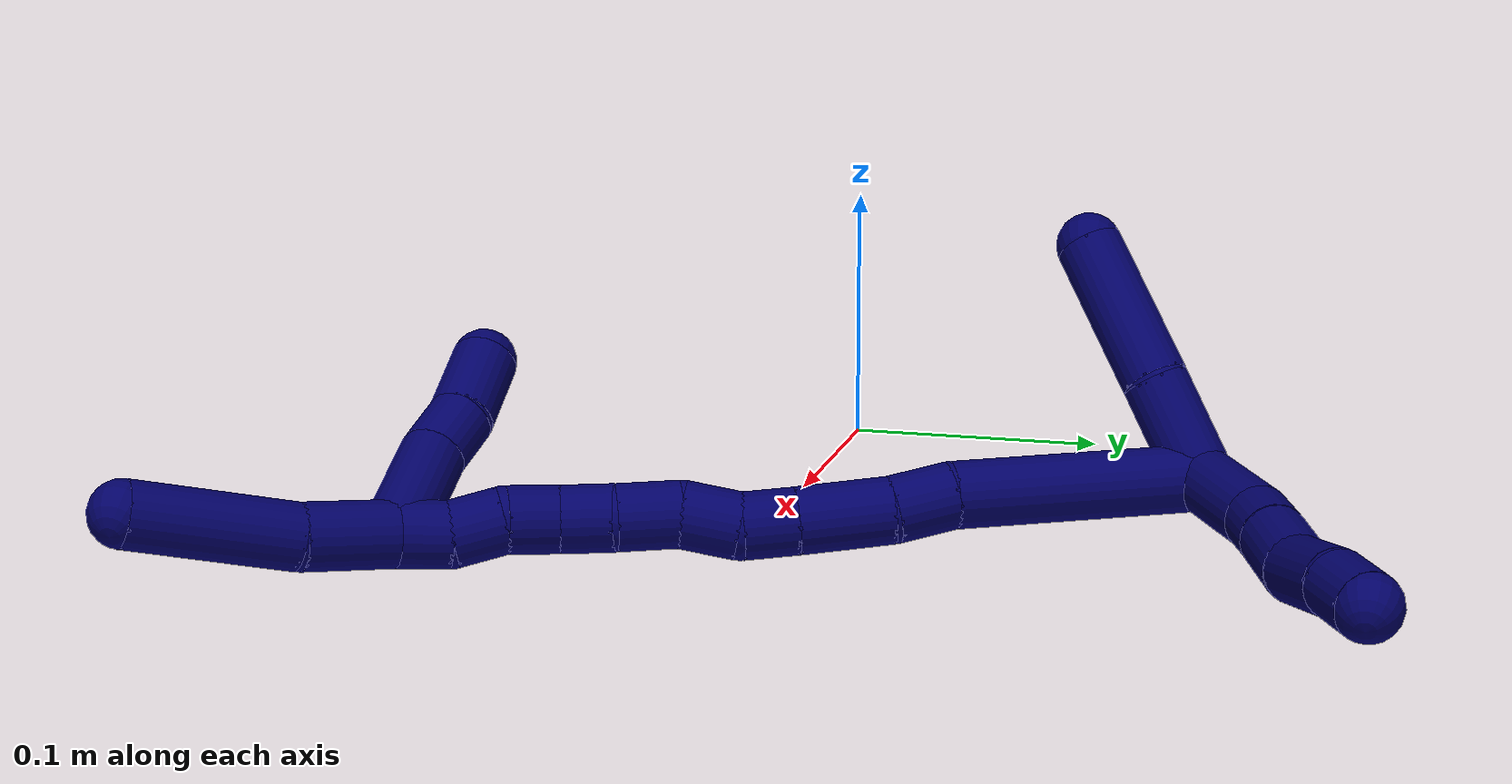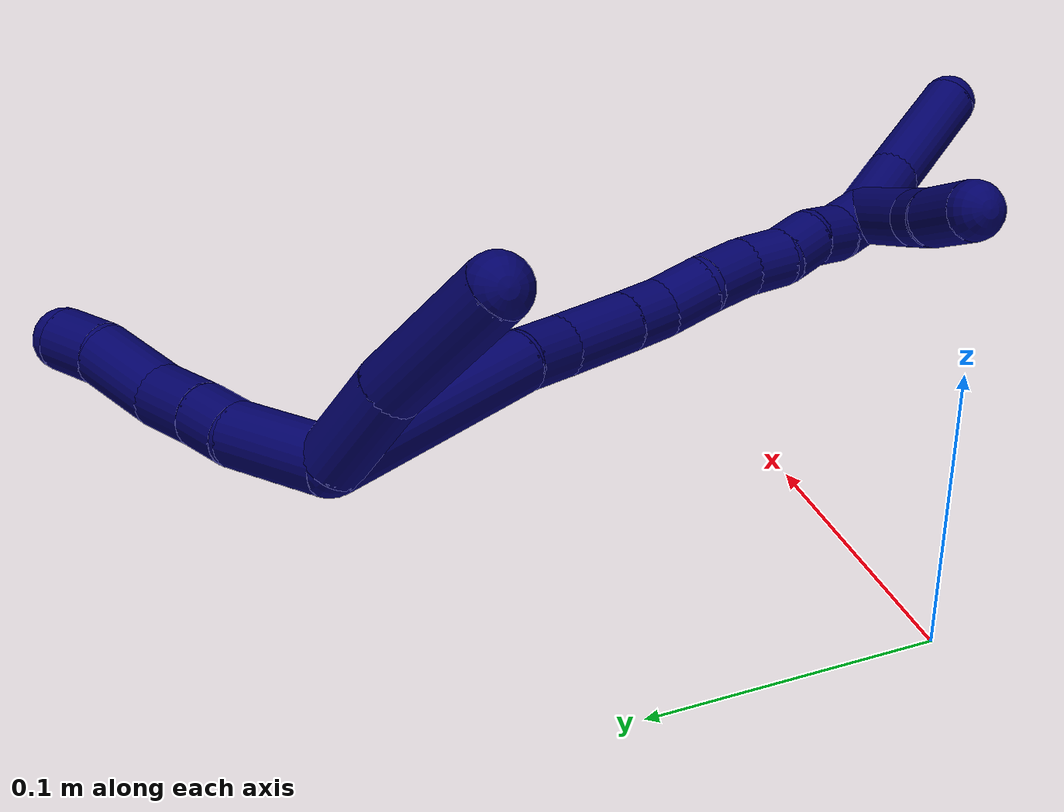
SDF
<sdf version="1.7">
 <world name="default">
  <model name="7">
   <static>0</static>
   <link name="7">
    <collision name="collision-cylinder-e_1_2_8">
     <pose>0.002714 0.013379 -0.01723 -2.48135 0.123783 -0.357837</pose>
     <geometry><cylinder><radius>0.0125</radius><length>0.043966</length></cylinder></geometry>
     <surface>
      <friction><ode><mu>1.16</mu><mu2>1.16</mu2><slip1>0</slip1><slip2>0</slip2></ode></friction>
      <contact><ode><kp>1e+06</kp><kd>1</kd><max_vel>0</max_vel><min_depth>0.001</min_depth></ode></contact>
     </surface>
    </collision>
    <visual name="visual-cylinder-e_1_2_8">
     <pose>0.002714 0.013379 -0.01723 -2.48135 0.123783 -0.357837</pose>
     <geometry><cylinder><radius>0.0125</radius><length>0.043966</length></cylinder></geometry>
     <material><ambient>0.003922 0 0.403922 1</ambient></material>
    </visual>
    <collision name="collision-cylinder-e_2_8_9">
     <pose>0.00789 0.031419 -0.043378 -2.65994 0.239914 -0.912521</pose>
     <geometry><cylinder><radius>0.0125</radius><length>0.020718</length></cylinder></geometry>
     <surface>
      <friction><ode><mu>1.16</mu><mu2>1.16</mu2><slip1>0</slip1><slip2>0</slip2></ode></friction>
      <contact><ode><kp>1e+06</kp><kd>1</kd><max_vel>0</max_vel><min_depth>0.001</min_depth></ode></contact>
     </surface>
    </collision>
    <visual name="visual-cylinder-e_2_8_9">
     <pose>0.00789 0.031419 -0.043378 -2.65994 0.239914 -0.912521</pose>
     <geometry><cylinder><radius>0.0125</radius><length>0.020718</length></cylinder></geometry>
     <material><ambient>0.003922 0 0.403922 1</ambient></material>
    </visual>
    <collision name="collision-cylinder-e_3_9_10">
     <pose>0.012822 0.042149 -0.064535 -2.68131 0.178901 -0.731207</pose>
     <geometry><cylinder><radius>0.0125</radius><length>0.027765</length></cylinder></geometry>
     <surface>
      <friction><ode><mu>1.16</mu><mu2>1.16</mu2><slip1>0</slip1><slip2>0</slip2></ode></friction>
      <contact><ode><kp>1e+06</kp><kd>1</kd><max_vel>0</max_vel><min_depth>0.001</min_depth></ode></contact>
     </surface>
    </collision>
    <visual name="visual-cylinder-e_3_9_10">
     <pose>0.012822 0.042149 -0.064535 -2.68131 0.178901 -0.731207</pose>
     <geometry><cylinder><radius>0.0125</radius><length>0.027765</length></cylinder></geometry>
     <material><ambient>0.003922 0 0.403922 1</ambient></material>
    </visual>
    <collision name="collision-cylinder-e_4_10_11">
     <pose>0.021807 0.058115 -0.089431 -2.47795 0.385211 -1.03009</pose>
     <geometry><cylinder><radius>0.0125</radius><length>0.034677</length></cylinder></geometry>
     <surface>
      <friction><ode><mu>1.16</mu><mu2>1.16</mu2><slip1>0</slip1><slip2>0</slip2></ode></friction>
      <contact><ode><kp>1e+06</kp><kd>1</kd><max_vel>0</max_vel><min_depth>0.001</min_depth></ode></contact>
     </surface>
    </collision>
    <visual name="visual-cylinder-e_4_10_11">
     <pose>0.021807 0.058115 -0.089431 -2.47795 0.385211 -1.03009</pose>
     <geometry><cylinder><radius>0.0125</radius><length>0.034677</length></cylinder></geometry>
     <material><ambient>0.003922 0 0.403922 1</ambient></material>
    </visual>
    <collision name="collision-cylinder-e_5_11_6">
     <pose>0.030374 0.074619 -0.111197 -2.51406 0.180419 -0.543726</pose>
     <geometry><cylinder><radius>0.0125</radius><length>0.022875</length></cylinder></geometry>
     <surface>
      <friction><ode><mu>1.16</mu><mu2>1.16</mu2><slip1>0</slip1><slip2>0</slip2></ode></friction>
      <contact><ode><kp>1e+06</kp><kd>1</kd><max_vel>0</max_vel><min_depth>0.001</min_depth></ode></contact>
     </surface>
    </collision>
    <visual name="visual-cylinder-e_5_11_6">
     <pose>0.030374 0.074619 -0.111197 -2.51406 0.180419 -0.543726</pose>
     <geometry><cylinder><radius>0.0125</radius><length>0.022875</length></cylinder></geometry>
     <material><ambient>0.003922 0 0.403922 1</ambient></material>
    </visual>
    <collision name="collision-cylinder-e_1_2_12">
     <pose>0.014013 -0.006002 0.012814 0.438019 0.780543 0.182617</pose>
     <geometry><cylinder><radius>0.0125</radius><length>0.03983</length></cylinder></geometry>
     <surface>
      <friction><ode><mu>1.16</mu><mu2>1.16</mu2><slip1>0</slip1><slip2>0</slip2></ode></friction>
      <contact><ode><kp>1e+06</kp><kd>1</kd><max_vel>0</max_vel><min_depth>0.001</min_depth></ode></contact>
     </surface>
    </collision>
    <visual name="visual-cylinder-e_1_2_12">
     <pose>0.014013 -0.006002 0.012814 0.438019 0.780543 0.182617</pose>
     <geometry><cylinder><radius>0.0125</radius><length>0.03983</length></cylinder></geometry>
     <material><ambient>0.003922 0 0.403922 1</ambient></material>
    </visual>
    <collision name="collision-cylinder-e_2_12_5">
     <pose>0.045888 -0.022267 0.047555 0.437816 0.635614 0.146108</pose>
     <geometry><cylinder><radius>0.0125</radius><length>0.06017</length></cylinder></geometry>
     <surface>
      <friction><ode><mu>1.16</mu><mu2>1.16</mu2><slip1>0</slip1><slip2>0</slip2></ode></friction>
      <contact><ode><kp>1e+06</kp><kd>1</kd><max_vel>0</max_vel><min_depth>0.001</min_depth></ode></contact>
     </surface>
    </collision>
    <visual name="visual-cylinder-e_2_12_5">
     <pose>0.045888 -0.022267 0.047555 0.437816 0.635614 0.146108</pose>
     <geometry><cylinder><radius>0.0125</radius><length>0.06017</length></cylinder></geometry>
     <material><ambient>0.003922 0 0.403922 1</ambient></material>
    </visual>
    <collision name="collision-cylinder-e_1_2_13">
     <pose>0.019793 -0.039029 -0.018636 2.01628 0.429202 0.665507</pose>
     <geometry><cylinder><radius>0.0125</radius><length>0.095128</length></cylinder></geometry>
     <surface>
      <friction><ode><mu>1.16</mu><mu2>1.16</mu2><slip1>0</slip1><slip2>0</slip2></ode></friction>
      <contact><ode><kp>1e+06</kp><kd>1</kd><max_vel>0</max_vel><min_depth>0.001</min_depth></ode></contact>
     </surface>
    </collision>
    <visual name="visual-cylinder-e_1_2_13">
     <pose>0.019793 -0.039029 -0.018636 2.01628 0.429202 0.665507</pose>
     <geometry><cylinder><radius>0.0125</radius><length>0.095128</length></cylinder></geometry>
     <material><ambient>0.003922 0 0.403922 1</ambient></material>
    </visual>
    <collision name="collision-cylinder-e_2_13_14">
     <pose>0.042815 -0.087631 -0.04289 2.10144 0.283028 0.487658</pose>
     <geometry><cylinder><radius>0.0125</radius><length>0.02312</length></cylinder></geometry>
     <surface>
      <friction><ode><mu>1.16</mu><mu2>1.16</mu2><slip1>0</slip1><slip2>0</slip2></ode></friction>
      <contact><ode><kp>1e+06</kp><kd>1</kd><max_vel>0</max_vel><min_depth>0.001</min_depth></ode></contact>
     </surface>
    </collision>
    <visual name="visual-cylinder-e_2_13_14">
     <pose>0.042815 -0.087631 -0.04289 2.10144 0.283028 0.487658</pose>
     <geometry><cylinder><radius>0.0125</radius><length>0.02312</length></cylinder></geometry>
     <material><ambient>0.003922 0 0.403922 1</ambient></material>
    </visual>
    <collision name="collision-cylinder-e_3_14_15">
     <pose>0.051913 -0.112567 -0.054703 1.95416 0.340532 0.498849</pose>
     <geometry><cylinder><radius>0.0125</radius><length>0.035148</length></cylinder></geometry>
     <surface>
      <friction><ode><mu>1.16</mu><mu2>1.16</mu2><slip1>0</slip1><slip2>0</slip2></ode></friction>
      <contact><ode><kp>1e+06</kp><kd>1</kd><max_vel>0</max_vel><min_depth>0.001</min_depth></ode></contact>
     </surface>
    </collision>
    <visual name="visual-cylinder-e_3_14_15">
     <pose>0.051913 -0.112567 -0.054703 1.95416 0.340532 0.498849</pose>
     <geometry><cylinder><radius>0.0125</radius><length>0.035148</length></cylinder></geometry>
     <material><ambient>0.003922 0 0.403922 1</ambient></material>
    </visual>
    <collision name="collision-cylinder-e_4_15_16">
     <pose>0.061361 -0.136805 -0.064423 1.94876 0.358526 0.521676</pose>
     <geometry><cylinder><radius>0.0125</radius><length>0.020397</length></cylinder></geometry>
     <surface>
      <friction><ode><mu>1.16</mu><mu2>1.16</mu2><slip1>0</slip1><slip2>0</slip2></ode></friction>
      <contact><ode><kp>1e+06</kp><kd>1</kd><max_vel>0</max_vel><min_depth>0.001</min_depth></ode></contact>
     </surface>
    </collision>
    <visual name="visual-cylinder-e_4_15_16">
     <pose>0.061361 -0.136805 -0.064423 1.94876 0.358526 0.521676</pose>
     <geometry><cylinder><radius>0.0125</radius><length>0.020397</length></cylinder></geometry>
     <material><ambient>0.003922 0 0.403922 1</ambient></material>
    </visual>
    <collision name="collision-cylinder-e_5_16_17">
     <pose>0.070488 -0.155211 -0.068704 1.64996 0.525819 0.56698</pose>
     <geometry><cylinder><radius>0.0125</radius><length>0.022106</length></cylinder></geometry>
     <surface>
      <friction><ode><mu>1.16</mu><mu2>1.16</mu2><slip1>0</slip1><slip2>0</slip2></ode></friction>
      <contact><ode><kp>1e+06</kp><kd>1</kd><max_vel>0</max_vel><min_depth>0.001</min_depth></ode></contact>
     </surface>
    </collision>
    <visual name="visual-cylinder-e_5_16_17">
     <pose>0.070488 -0.155211 -0.068704 1.64996 0.525819 0.56698</pose>
     <geometry><cylinder><radius>0.0125</radius><length>0.022106</length></cylinder></geometry>
     <material><ambient>0.003922 0 0.403922 1</ambient></material>
    </visual>
    <collision name="collision-cylinder-e_6_17_18">
     <pose>0.080653 -0.174921 -0.073428 1.94253 0.399843 0.576446</pose>
     <geometry><cylinder><radius>0.0125</radius><length>0.023723</length></cylinder></geometry>
     <surface>
      <friction><ode><mu>1.16</mu><mu2>1.16</mu2><slip1>0</slip1><slip2>0</slip2></ode></friction>
      <contact><ode><kp>1e+06</kp><kd>1</kd><max_vel>0</max_vel><min_depth>0.001</min_depth></ode></contact>
     </surface>
    </collision>
    <visual name="visual-cylinder-e_6_17_18">
     <pose>0.080653 -0.174921 -0.073428 1.94253 0.399843 0.576446</pose>
     <geometry><cylinder><radius>0.0125</radius><length>0.023723</length></cylinder></geometry>
     <material><ambient>0.003922 0 0.403922 1</ambient></material>
    </visual>
    <collision name="collision-cylinder-e_7_18_19">
     <pose>0.088372 -0.194571 -0.079238 1.7628 0.311115 0.375999</pose>
     <geometry><cylinder><radius>0.0125</radius><length>0.020269</length></cylinder></geometry>
     <surface>
      <friction><ode><mu>1.16</mu><mu2>1.16</mu2><slip1>0</slip1><slip2>0</slip2></ode></friction>
      <contact><ode><kp>1e+06</kp><kd>1</kd><max_vel>0</max_vel><min_depth>0.001</min_depth></ode></contact>
     </surface>
    </collision>
    <visual name="visual-cylinder-e_7_18_19">
     <pose>0.088372 -0.194571 -0.079238 1.7628 0.311115 0.375999</pose>
     <geometry><cylinder><radius>0.0125</radius><length>0.020269</length></cylinder></geometry>
     <material><ambient>0.003922 0 0.403922 1</ambient></material>
    </visual>
    <collision name="collision-cylinder-e_8_19_20">
     <pose>0.096276 -0.212027 -0.084837 2.01062 0.498247 0.762532</pose>
     <geometry><cylinder><radius>0.0125</radius><length>0.020093</length></cylinder></geometry>
     <surface>
      <friction><ode><mu>1.16</mu><mu2>1.16</mu2><slip1>0</slip1><slip2>0</slip2></ode></friction>
      <contact><ode><kp>1e+06</kp><kd>1</kd><max_vel>0</max_vel><min_depth>0.001</min_depth></ode></contact>
     </surface>
    </collision>
    <visual name="visual-cylinder-e_8_19_20">
     <pose>0.096276 -0.212027 -0.084837 2.01062 0.498247 0.762532</pose>
     <geometry><cylinder><radius>0.0125</radius><length>0.020093</length></cylinder></geometry>
     <material><ambient>0.003922 0 0.403922 1</ambient></material>
    </visual>
    <collision name="collision-cylinder-e_9_20_21">
     <pose>0.103156 -0.228737 -0.093024 2.04059 0.209327 0.339004</pose>
     <geometry><cylinder><radius>0.0125</radius><length>0.020006</length></cylinder></geometry>
     <surface>
      <friction><ode><mu>1.16</mu><mu2>1.16</mu2><slip1>0</slip1><slip2>0</slip2></ode></friction>
      <contact><ode><kp>1e+06</kp><kd>1</kd><max_vel>0</max_vel><min_depth>0.001</min_depth></ode></contact>
     </surface>
    </collision>
    <visual name="visual-cylinder-e_9_20_21">
     <pose>0.103156 -0.228737 -0.093024 2.04059 0.209327 0.339004</pose>
     <geometry><cylinder><radius>0.0125</radius><length>0.020006</length></cylinder></geometry>
     <material><ambient>0.003922 0 0.403922 1</ambient></material>
    </visual>
    <collision name="collision-cylinder-e_10_21_1">
     <pose>0.110067 -0.245532 -0.100862 1.97042 0.504104 0.7408</pose>
     <geometry><cylinder><radius>0.0125</radius><length>0.02001</length></cylinder></geometry>
     <surface>
      <friction><ode><mu>1.16</mu><mu2>1.16</mu2><slip1>0</slip1><slip2>0</slip2></ode></friction>
      <contact><ode><kp>1e+06</kp><kd>1</kd><max_vel>0</max_vel><min_depth>0.001</min_depth></ode></contact>
     </surface>
    </collision>
    <visual name="visual-cylinder-e_10_21_1">
     <pose>0.110067 -0.245532 -0.100862 1.97042 0.504104 0.7408</pose>
     <geometry><cylinder><radius>0.0125</radius><length>0.02001</length></cylinder></geometry>
     <material><ambient>0.003922 0 0.403922 1</ambient></material>
    </visual>
    <collision name="collision-cylinder-e_1_1_22">
     <pose>0.125097 -0.265133 -0.113923 2.26777 0.595884 1.16333</pose>
     <geometry><cylinder><radius>0.0125</radius><length>0.036338</length></cylinder></geometry>
     <surface>
      <friction><ode><mu>1.16</mu><mu2>1.16</mu2><slip1>0</slip1><slip2>0</slip2></ode></friction>
      <contact><ode><kp>1e+06</kp><kd>1</kd><max_vel>0</max_vel><min_depth>0.001</min_depth></ode></contact>
     </surface>
    </collision>
    <visual name="visual-cylinder-e_1_1_22">
     <pose>0.125097 -0.265133 -0.113923 2.26777 0.595884 1.16333</pose>
     <geometry><cylinder><radius>0.0125</radius><length>0.036338</length></cylinder></geometry>
     <material><ambient>0.003922 0 0.403922 1</ambient></material>
    </visual>
    <collision name="collision-cylinder-e_2_22_4">
     <pose>0.156099 -0.297226 -0.136128 2.11886 0.712316 1.17087</pose>
     <geometry><cylinder><radius>0.0125</radius><length>0.063662</length></cylinder></geometry>
     <surface>
      <friction><ode><mu>1.16</mu><mu2>1.16</mu2><slip1>0</slip1><slip2>0</slip2></ode></friction>
      <contact><ode><kp>1e+06</kp><kd>1</kd><max_vel>0</max_vel><min_depth>0.001</min_depth></ode></contact>
     </surface>
    </collision>
    <visual name="visual-cylinder-e_2_22_4">
     <pose>0.156099 -0.297226 -0.136128 2.11886 0.712316 1.17087</pose>
     <geometry><cylinder><radius>0.0125</radius><length>0.063662</length></cylinder></geometry>
     <material><ambient>0.003922 0 0.403922 1</ambient></material>
    </visual>
    <collision name="collision-cylinder-e_1_1_23">
     <pose>0.113672 -0.25396 -0.081114 0.015451 -0.052977 -0.000409</pose>
     <geometry><cylinder><radius>0.0125</radius><length>0.046382</length></cylinder></geometry>
     <surface>
      <friction><ode><mu>1.16</mu><mu2>1.16</mu2><slip1>0</slip1><slip2>0</slip2></ode></friction>
      <contact><ode><kp>1e+06</kp><kd>1</kd><max_vel>0</max_vel><min_depth>0.001</min_depth></ode></contact>
     </surface>
    </collision>
    <visual name="visual-cylinder-e_1_1_23">
     <pose>0.113672 -0.25396 -0.081114 0.015451 -0.052977 -0.000409</pose>
     <geometry><cylinder><radius>0.0125</radius><length>0.046382</length></cylinder></geometry>
     <material><ambient>0.003922 0 0.403922 1</ambient></material>
    </visual>
    <collision name="collision-cylinder-e_2_23_24">
     <pose>0.111962 -0.251986 -0.047203 -0.213536 -0.043735 0.004688</pose>
     <geometry><cylinder><radius>0.0125</radius><length>0.02203</length></cylinder></geometry>
     <surface>
      <friction><ode><mu>1.16</mu><mu2>1.16</mu2><slip1>0</slip1><slip2>0</slip2></ode></friction>
      <contact><ode><kp>1e+06</kp><kd>1</kd><max_vel>0</max_vel><min_depth>0.001</min_depth></ode></contact>
     </surface>
    </collision>
    <visual name="visual-cylinder-e_2_23_24">
     <pose>0.111962 -0.251986 -0.047203 -0.213536 -0.043735 0.004688</pose>
     <geometry><cylinder><radius>0.0125</radius><length>0.02203</length></cylinder></geometry>
     <material><ambient>0.003922 0 0.403922 1</ambient></material>
    </visual>
    <collision name="collision-cylinder-e_3_24_3">
     <pose>0.112314 -0.249081 -0.020688 -0.036305 0.052803 -0.000959</pose>
     <geometry><cylinder><radius>0.0125</radius><length>0.031587</length></cylinder></geometry>
     <surface>
      <friction><ode><mu>1.16</mu><mu2>1.16</mu2><slip1>0</slip1><slip2>0</slip2></ode></friction>
      <contact><ode><kp>1e+06</kp><kd>1</kd><max_vel>0</max_vel><min_depth>0.001</min_depth></ode></contact>
     </surface>
    </collision>
    <visual name="visual-cylinder-e_3_24_3">
     <pose>0.112314 -0.249081 -0.020688 -0.036305 0.052803 -0.000959</pose>
     <geometry><cylinder><radius>0.0125</radius><length>0.031587</length></cylinder></geometry>
     <material><ambient>0.003922 0 0.403922 1</ambient></material>
    </visual>
    <collision name="collision-sphere-3">
     <pose>0.113148 -0.248509 -0.004926 0 -0 0</pose>
     <geometry><sphere><radius>0.0125</radius></sphere></geometry>
     <surface>
      <friction><ode><mu>1.16</mu><mu2>1.16</mu2><slip1>0</slip1><slip2>0</slip2></ode></friction>
      <contact><ode><kp>1e+06</kp><kd>1</kd><max_vel>0</max_vel><min_depth>0.001</min_depth></ode></contact>
     </surface>
    </collision>
    <visual name="visual-sphere-3">
     <pose>0.113148 -0.248509 -0.004926 0 -0 0</pose>
     <geometry><sphere><radius>0.0125</radius></sphere></geometry>
     <material><ambient>0.003922 0 0.403922 1</ambient></material>
    </visual>
    <collision name="collision-sphere-24">
     <pose>0.11148 -0.249654 -0.036449 0 -0 0</pose>
     <geometry><sphere><radius>0.0125</radius></sphere></geometry>
     <surface>
      <friction><ode><mu>1.16</mu><mu2>1.16</mu2><slip1>0</slip1><slip2>0</slip2></ode></friction>
      <contact><ode><kp>1e+06</kp><kd>1</kd><max_vel>0</max_vel><min_depth>0.001</min_depth></ode></contact>
     </surface>
    </collision>
    <visual name="visual-sphere-24">
     <pose>0.11148 -0.249654 -0.036449 0 -0 0</pose>
     <geometry><sphere><radius>0.0125</radius></sphere></geometry>
     <material><ambient>0.003922 0 0.403922 1</ambient></material>
    </visual>
    <collision name="collision-sphere-23">
     <pose>0.112444 -0.254318 -0.057958 0 -0 0</pose>
     <geometry><sphere><radius>0.0125</radius></sphere></geometry>
     <surface>
      <friction><ode><mu>1.16</mu><mu2>1.16</mu2><slip1>0</slip1><slip2>0</slip2></ode></friction>
      <contact><ode><kp>1e+06</kp><kd>1</kd><max_vel>0</max_vel><min_depth>0.001</min_depth></ode></contact>
     </surface>
    </collision>
    <visual name="visual-sphere-23">
     <pose>0.112444 -0.254318 -0.057958 0 -0 0</pose>
     <geometry><sphere><radius>0.0125</radius></sphere></geometry>
     <material><ambient>0.003922 0 0.403922 1</ambient></material>
    </visual>
    <collision name="collision-sphere-4">
     <pose>0.176903 -0.317789 -0.14868 0 -0 0</pose>
     <geometry><sphere><radius>0.0125</radius></sphere></geometry>
     <surface>
      <friction><ode><mu>1.16</mu><mu2>1.16</mu2><slip1>0</slip1><slip2>0</slip2></ode></friction>
      <contact><ode><kp>1e+06</kp><kd>1</kd><max_vel>0</max_vel><min_depth>0.001</min_depth></ode></contact>
     </surface>
    </collision>
    <visual name="visual-sphere-4">
     <pose>0.176903 -0.317789 -0.14868 0 -0 0</pose>
     <geometry><sphere><radius>0.0125</radius></sphere></geometry>
     <material><ambient>0.003922 0 0.403922 1</ambient></material>
    </visual>
    <collision name="collision-sphere-22">
     <pose>0.135294 -0.276664 -0.123576 0 -0 0</pose>
     <geometry><sphere><radius>0.0125</radius></sphere></geometry>
     <surface>
      <friction><ode><mu>1.16</mu><mu2>1.16</mu2><slip1>0</slip1><slip2>0</slip2></ode></friction>
      <contact><ode><kp>1e+06</kp><kd>1</kd><max_vel>0</max_vel><min_depth>0.001</min_depth></ode></contact>
     </surface>
    </collision>
    <visual name="visual-sphere-22">
     <pose>0.135294 -0.276664 -0.123576 0 -0 0</pose>
     <geometry><sphere><radius>0.0125</radius></sphere></geometry>
     <material><ambient>0.003922 0 0.403922 1</ambient></material>
    </visual>
    <collision name="collision-sphere-1">
     <pose>0.1149 -0.253602 -0.10427 0 -0 0</pose>
     <geometry><sphere><radius>0.0125</radius></sphere></geometry>
     <surface>
      <friction><ode><mu>1.16</mu><mu2>1.16</mu2><slip1>0</slip1><slip2>0</slip2></ode></friction>
      <contact><ode><kp>1e+06</kp><kd>1</kd><max_vel>0</max_vel><min_depth>0.001</min_depth></ode></contact>
     </surface>
    </collision>
    <visual name="visual-sphere-1">
     <pose>0.1149 -0.253602 -0.10427 0 -0 0</pose>
     <geometry><sphere><radius>0.0125</radius></sphere></geometry>
     <material><ambient>0.003922 0 0.403922 1</ambient></material>
    </visual>
    <collision name="collision-sphere-21">
     <pose>0.105234 -0.237462 -0.097453 0 -0 0</pose>
     <geometry><sphere><radius>0.0125</radius></sphere></geometry>
     <surface>
      <friction><ode><mu>1.16</mu><mu2>1.16</mu2><slip1>0</slip1><slip2>0</slip2></ode></friction>
      <contact><ode><kp>1e+06</kp><kd>1</kd><max_vel>0</max_vel><min_depth>0.001</min_depth></ode></contact>
     </surface>
    </collision>
    <visual name="visual-sphere-21">
     <pose>0.105234 -0.237462 -0.097453 0 -0 0</pose>
     <geometry><sphere><radius>0.0125</radius></sphere></geometry>
     <material><ambient>0.003922 0 0.403922 1</ambient></material>
    </visual>
    <collision name="collision-sphere-6">
     <pose>0.032427 0.081225 -0.120305 0 -0 0</pose>
     <geometry><sphere><radius>0.0125</radius></sphere></geometry>
     <surface>
      <friction><ode><mu>1.16</mu><mu2>1.16</mu2><slip1>0</slip1><slip2>0</slip2></ode></friction>
      <contact><ode><kp>1e+06</kp><kd>1</kd><max_vel>0</max_vel><min_depth>0.001</min_depth></ode></contact>
     </surface>
    </collision>
    <visual name="visual-sphere-6">
     <pose>0.032427 0.081225 -0.120305 0 -0 0</pose>
     <geometry><sphere><radius>0.0125</radius></sphere></geometry>
     <material><ambient>0.003922 0 0.403922 1</ambient></material>
    </visual>
    <collision name="collision-sphere-11">
     <pose>0.028322 0.068012 -0.102089 0 -0 0</pose>
     <geometry><sphere><radius>0.0125</radius></sphere></geometry>
     <surface>
      <friction><ode><mu>1.16</mu><mu2>1.16</mu2><slip1>0</slip1><slip2>0</slip2></ode></friction>
      <contact><ode><kp>1e+06</kp><kd>1</kd><max_vel>0</max_vel><min_depth>0.001</min_depth></ode></contact>
     </surface>
    </collision>
    <visual name="visual-sphere-11">
     <pose>0.028322 0.068012 -0.102089 0 -0 0</pose>
     <geometry><sphere><radius>0.0125</radius></sphere></geometry>
     <material><ambient>0.003922 0 0.403922 1</ambient></material>
    </visual>
    <collision name="collision-sphere-10">
     <pose>0.015292 0.048217 -0.076774 0 -0 0</pose>
     <geometry><sphere><radius>0.0125</radius></sphere></geometry>
     <surface>
      <friction><ode><mu>1.16</mu><mu2>1.16</mu2><slip1>0</slip1><slip2>0</slip2></ode></friction>
      <contact><ode><kp>1e+06</kp><kd>1</kd><max_vel>0</max_vel><min_depth>0.001</min_depth></ode></contact>
     </surface>
    </collision>
    <visual name="visual-sphere-10">
     <pose>0.015292 0.048217 -0.076774 0 -0 0</pose>
     <geometry><sphere><radius>0.0125</radius></sphere></geometry>
     <material><ambient>0.003922 0 0.403922 1</ambient></material>
    </visual>
    <collision name="collision-sphere-9">
     <pose>0.010351 0.036081 -0.052296 0 -0 0</pose>
     <geometry><sphere><radius>0.0125</radius></sphere></geometry>
     <surface>
      <friction><ode><mu>1.16</mu><mu2>1.16</mu2><slip1>0</slip1><slip2>0</slip2></ode></friction>
      <contact><ode><kp>1e+06</kp><kd>1</kd><max_vel>0</max_vel><min_depth>0.001</min_depth></ode></contact>
     </surface>
    </collision>
    <visual name="visual-sphere-9">
     <pose>0.010351 0.036081 -0.052296 0 -0 0</pose>
     <geometry><sphere><radius>0.0125</radius></sphere></geometry>
     <material><ambient>0.003922 0 0.403922 1</ambient></material>
    </visual>
    <collision name="collision-sphere-2">
     <geometry><sphere><radius>0.0125</radius></sphere></geometry>
     <surface>
      <friction><ode><mu>1.16</mu><mu2>1.16</mu2><slip1>0</slip1><slip2>0</slip2></ode></friction>
      <contact><ode><kp>1e+06</kp><kd>1</kd><max_vel>0</max_vel><min_depth>0.001</min_depth></ode></contact>
     </surface>
    </collision>
    <visual name="visual-sphere-2">
     <geometry><sphere><radius>0.0125</radius></sphere></geometry>
     <material><ambient>0.003922 0 0.403922 1</ambient></material>
    </visual>
    <collision name="collision-sphere-19">
     <pose>0.091475 -0.204042 -0.081079 0 -0 0</pose>
     <geometry><sphere><radius>0.0125</radius></sphere></geometry>
     <surface>
      <friction><ode><mu>1.16</mu><mu2>1.16</mu2><slip1>0</slip1><slip2>0</slip2></ode></friction>
      <contact><ode><kp>1e+06</kp><kd>1</kd><max_vel>0</max_vel><min_depth>0.001</min_depth></ode></contact>
     </surface>
    </collision>
    <visual name="visual-sphere-19">
     <pose>0.091475 -0.204042 -0.081079 0 -0 0</pose>
     <geometry><sphere><radius>0.0125</radius></sphere></geometry>
     <material><ambient>0.003922 0 0.403922 1</ambient></material>
    </visual>
    <collision name="collision-sphere-8">
     <pose>0.005428 0.026758 -0.03446 0 -0 0</pose>
     <geometry><sphere><radius>0.0125</radius></sphere></geometry>
     <surface>
      <friction><ode><mu>1.16</mu><mu2>1.16</mu2><slip1>0</slip1><slip2>0</slip2></ode></friction>
      <contact><ode><kp>1e+06</kp><kd>1</kd><max_vel>0</max_vel><min_depth>0.001</min_depth></ode></contact>
     </surface>
    </collision>
    <visual name="visual-sphere-8">
     <pose>0.005428 0.026758 -0.03446 0 -0 0</pose>
     <geometry><sphere><radius>0.0125</radius></sphere></geometry>
     <material><ambient>0.003922 0 0.403922 1</ambient></material>
    </visual>
    <collision name="collision-sphere-12">
     <pose>0.028027 -0.012004 0.025629 0 -0 0</pose>
     <geometry><sphere><radius>0.0125</radius></sphere></geometry>
     <surface>
      <friction><ode><mu>1.16</mu><mu2>1.16</mu2><slip1>0</slip1><slip2>0</slip2></ode></friction>
      <contact><ode><kp>1e+06</kp><kd>1</kd><max_vel>0</max_vel><min_depth>0.001</min_depth></ode></contact>
     </surface>
    </collision>
    <visual name="visual-sphere-12">
     <pose>0.028027 -0.012004 0.025629 0 -0 0</pose>
     <geometry><sphere><radius>0.0125</radius></sphere></geometry>
     <material><ambient>0.003922 0 0.403922 1</ambient></material>
    </visual>
    <collision name="collision-sphere-5">
     <pose>0.063748 -0.032531 0.069481 0 -0 0</pose>
     <geometry><sphere><radius>0.0125</radius></sphere></geometry>
     <surface>
      <friction><ode><mu>1.16</mu><mu2>1.16</mu2><slip1>0</slip1><slip2>0</slip2></ode></friction>
      <contact><ode><kp>1e+06</kp><kd>1</kd><max_vel>0</max_vel><min_depth>0.001</min_depth></ode></contact>
     </surface>
    </collision>
    <visual name="visual-sphere-5">
     <pose>0.063748 -0.032531 0.069481 0 -0 0</pose>
     <geometry><sphere><radius>0.0125</radius></sphere></geometry>
     <material><ambient>0.003922 0 0.403922 1</ambient></material>
    </visual>
    <collision name="collision-sphere-13">
     <pose>0.039587 -0.078057 -0.037272 0 -0 0</pose>
     <geometry><sphere><radius>0.0125</radius></sphere></geometry>
     <surface>
      <friction><ode><mu>1.16</mu><mu2>1.16</mu2><slip1>0</slip1><slip2>0</slip2></ode></friction>
      <contact><ode><kp>1e+06</kp><kd>1</kd><max_vel>0</max_vel><min_depth>0.001</min_depth></ode></contact>
     </surface>
    </collision>
    <visual name="visual-sphere-13">
     <pose>0.039587 -0.078057 -0.037272 0 -0 0</pose>
     <geometry><sphere><radius>0.0125</radius></sphere></geometry>
     <material><ambient>0.003922 0 0.403922 1</ambient></material>
    </visual>
    <collision name="collision-sphere-14">
     <pose>0.046043 -0.097204 -0.048507 0 -0 0</pose>
     <geometry><sphere><radius>0.0125</radius></sphere></geometry>
     <surface>
      <friction><ode><mu>1.16</mu><mu2>1.16</mu2><slip1>0</slip1><slip2>0</slip2></ode></friction>
      <contact><ode><kp>1e+06</kp><kd>1</kd><max_vel>0</max_vel><min_depth>0.001</min_depth></ode></contact>
     </surface>
    </collision>
    <visual name="visual-sphere-14">
     <pose>0.046043 -0.097204 -0.048507 0 -0 0</pose>
     <geometry><sphere><radius>0.0125</radius></sphere></geometry>
     <material><ambient>0.003922 0 0.403922 1</ambient></material>
    </visual>
    <collision name="collision-sphere-15">
     <pose>0.057783 -0.127929 -0.060899 0 -0 0</pose>
     <geometry><sphere><radius>0.0125</radius></sphere></geometry>
     <surface>
      <friction><ode><mu>1.16</mu><mu2>1.16</mu2><slip1>0</slip1><slip2>0</slip2></ode></friction>
      <contact><ode><kp>1e+06</kp><kd>1</kd><max_vel>0</max_vel><min_depth>0.001</min_depth></ode></contact>
     </surface>
    </collision>
    <visual name="visual-sphere-15">
     <pose>0.057783 -0.127929 -0.060899 0 -0 0</pose>
     <geometry><sphere><radius>0.0125</radius></sphere></geometry>
     <material><ambient>0.003922 0 0.403922 1</ambient></material>
    </visual>
    <collision name="collision-sphere-16">
     <pose>0.06494 -0.145681 -0.067947 0 -0 0</pose>
     <geometry><sphere><radius>0.0125</radius></sphere></geometry>
     <surface>
      <friction><ode><mu>1.16</mu><mu2>1.16</mu2><slip1>0</slip1><slip2>0</slip2></ode></friction>
      <contact><ode><kp>1e+06</kp><kd>1</kd><max_vel>0</max_vel><min_depth>0.001</min_depth></ode></contact>
     </surface>
    </collision>
    <visual name="visual-sphere-16">
     <pose>0.06494 -0.145681 -0.067947 0 -0 0</pose>
     <geometry><sphere><radius>0.0125</radius></sphere></geometry>
     <material><ambient>0.003922 0 0.403922 1</ambient></material>
    </visual>
    <collision name="collision-sphere-17">
     <pose>0.076035 -0.164741 -0.06946 0 -0 0</pose>
     <geometry><sphere><radius>0.0125</radius></sphere></geometry>
     <surface>
      <friction><ode><mu>1.16</mu><mu2>1.16</mu2><slip1>0</slip1><slip2>0</slip2></ode></friction>
      <contact><ode><kp>1e+06</kp><kd>1</kd><max_vel>0</max_vel><min_depth>0.001</min_depth></ode></contact>
     </surface>
    </collision>
    <visual name="visual-sphere-17">
     <pose>0.076035 -0.164741 -0.06946 0 -0 0</pose>
     <geometry><sphere><radius>0.0125</radius></sphere></geometry>
     <material><ambient>0.003922 0 0.403922 1</ambient></material>
    </visual>
    <collision name="collision-sphere-18">
     <pose>0.08527 -0.1851 -0.077397 0 -0 0</pose>
     <geometry><sphere><radius>0.0125</radius></sphere></geometry>
     <surface>
      <friction><ode><mu>1.16</mu><mu2>1.16</mu2><slip1>0</slip1><slip2>0</slip2></ode></friction>
      <contact><ode><kp>1e+06</kp><kd>1</kd><max_vel>0</max_vel><min_depth>0.001</min_depth></ode></contact>
     </surface>
    </collision>
    <visual name="visual-sphere-18">
     <pose>0.08527 -0.1851 -0.077397 0 -0 0</pose>
     <geometry><sphere><radius>0.0125</radius></sphere></geometry>
     <material><ambient>0.003922 0 0.403922 1</ambient></material>
    </visual>
    <collision name="collision-sphere-20">
     <pose>0.101077 -0.220013 -0.088594 0 -0 0</pose>
     <geometry><sphere><radius>0.0125</radius></sphere></geometry>
     <surface>
      <friction><ode><mu>1.16</mu><mu2>1.16</mu2><slip1>0</slip1><slip2>0</slip2></ode></friction>
      <contact><ode><kp>1e+06</kp><kd>1</kd><max_vel>0</max_vel><min_depth>0.001</min_depth></ode></contact>
     </surface>
    </collision>
    <visual name="visual-sphere-20">
     <pose>0.101077 -0.220013 -0.088594 0 -0 0</pose>
     <geometry><sphere><radius>0.0125</radius></sphere></geometry>
     <material><ambient>0.003922 0 0.403922 1</ambient></material>
    </visual>
    <inertial>
     <pose>0.064788 -0.115949 -0.053913 0 -0 0</pose>
     <mass>0.75</mass>
     <inertia><ixx>0.000214</ixx><ixy>0</ixy><ixz>0</ixz><iyy>7.2e-05</iyy><iyz>0</iyz><izz>9e-06</izz></inertia>
    </inertial>
   </link>
   <pose>0.135664 0.159146 0.022705 0.487497 -1.02969 -0.544391</pose>
  </model>
 </world>
</sdf>
